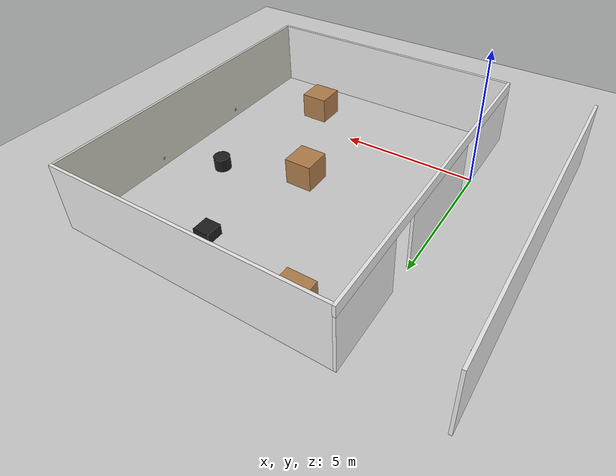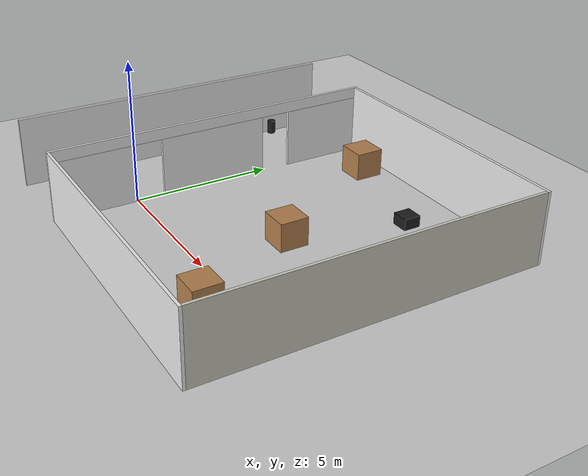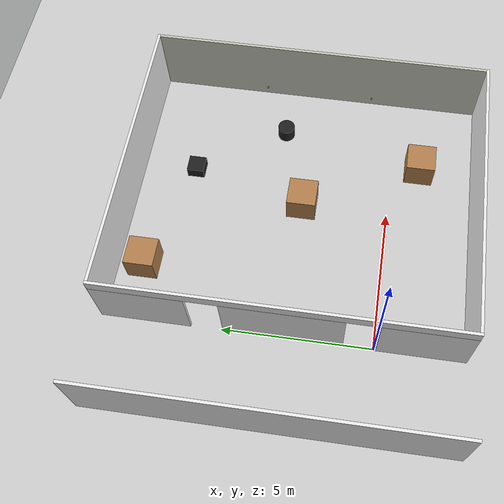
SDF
<sdf version="1.6">
 <world name="default">
  <include><uri>model://ground_plane</uri></include>
  <include><uri>model://sun</uri></include>
  <model name="walls">
   <static>true</static>
   <link name="wall_1">
    <collision name="wall_1_collision">
     <pose>0.03 2.96621 1.05342 0 0 0</pose>
     <geometry><box><size>0.1 3.93142 2.10684</size></box></geometry>
    </collision>
    <visual name="wall_1_visual">
     <pose>0.03 2.96621 1.05342 0 0 0</pose>
     <geometry><box><size>0.1 3.93142 2.10684</size></box></geometry>
     <material>
      <script><uri>file://media/materials/scripts/Gazebo.material</uri><name>Gazebo/White</name></script>
     </material>
    </visual>
   </link>
   <link name="wall_2">
    <collision name="wall_2_collision">
     <pose>0.03 -1.53429 1.05342 0 0 0</pose>
     <geometry><box><size>0.1 2.93142 2.10684</size></box></geometry>
    </collision>
    <visual name="wall_2_visual">
     <pose>0.03 -1.53429 1.05342 0 0 0</pose>
     <geometry><box><size>0.1 2.93142 2.10684</size></box></geometry>
     <material>
      <script><uri>file://media/materials/scripts/Gazebo.material</uri><name>Gazebo/White</name></script>
     </material>
    </visual>
   </link>
   <link name="wall_3">
    <collision name="wall_3_collision">
     <pose>0.03 7.5 1.05342 0 0 0</pose>
     <geometry><box><size>0.1 3 2.10684</size></box></geometry>
    </collision>
    <visual name="wall_3_visual">
     <pose>0.03 7.5 1.05342 0 0 0</pose>
     <geometry><box><size>0.1 3 2.10684</size></box></geometry>
     <material>
      <script><uri>file://media/materials/scripts/Gazebo.material</uri><name>Gazebo/White</name></script>
     </material>
    </visual>
   </link>
   <link name="wall_4">
    <collision name="wall_4_collision">
     <pose>0.03 3 2.30684 0 0 0</pose>
     <geometry><box><size>0.1 12 0.4</size></box></geometry>
    </collision>
    <visual name="wall_4_visual">
     <pose>0.03 3 2.30684 0 0 0</pose>
     <geometry><box><size>0.1 12 0.4</size></box></geometry>
     <material>
      <script><uri>file://media/materials/scripts/Gazebo.material</uri><name>Gazebo/White</name></script>
     </material>
    </visual>
   </link>
   <link name="wall_5">
    <collision name="wall_5_collision">
     <pose>5.04 -2.95 1.25342 0 0 0</pose>
     <geometry><box><size>9.92 0.1 2.50684</size></box></geometry>
    </collision>
    <visual name="wall_5_visual">
     <pose>5.04 -2.95 1.25342 0 0 0</pose>
     <geometry><box><size>9.92 0.1 2.50684</size></box></geometry>
     <material>
      <script><uri>file://media/materials/scripts/Gazebo.material</uri><name>Gazebo/White</name></script>
     </material>
    </visual>
   </link>
   <link name="wall_6">
    <collision name="wall_6_collision">
     <pose>5.04 8.95 1.25342 0 0 0</pose>
     <geometry><box><size>9.92 0.1 2.50684</size></box></geometry>
    </collision>
    <visual name="wall_6_visual">
     <pose>5.04 8.95 1.25342 0 0 0</pose>
     <geometry><box><size>9.92 0.1 2.50684</size></box></geometry>
     <material>
      <script><uri>file://media/materials/scripts/Gazebo.material</uri><name>Gazebo/White</name></script>
     </material>
    </visual>
   </link>
   <link name="wall_7">
    <collision name="wall_7_collision">
     <pose>9.95 3 1.25342 0 0 0</pose>
     <geometry><box><size>0.1 11.8 2.50684</size></box></geometry>
    </collision>
    <visual name="wall_7_visual">
     <pose>9.95 3 1.25342 0 0 0</pose>
     <geometry><box><size>0.1 11.8 2.50684</size></box></geometry>
     <material>
      <script><uri>file://media/materials/scripts/Gazebo.material</uri><name>Gazebo/PaintedWall</name></script>
     </material>
    </visual>
   </link>
   <link name="socket_1">
    <collision name="socket_1_collision">
     <pose>9.895 1 0.3 0 0 0</pose>
     <geometry><box><size>0.01 0.06 0.1</size></box></geometry>
    </collision>
    <visual name="socket_1_visual">
     <pose>9.895 1 0.3 0 0 0</pose>
     <geometry><box><size>0.01 0.06 0.1</size></box></geometry>
     <material>
      <script><uri>file://media/materials/scripts/texture.material</uri><name>dor_gazebo/socket</name></script>
     </material>
    </visual>
   </link>
   <link name="socket_2">
    <collision name="socket_2_collision">
     <pose>9.895 5 0.3 0 0 0</pose>
     <geometry><box><size>0.01 0.06 0.1</size></box></geometry>
    </collision>
    <visual name="socket_2_visual">
     <pose>9.895 5 0.3 0 0 0</pose>
     <geometry><box><size>0.01 0.06 0.1</size></box></geometry>
     <material>
      <script><uri>file://media/materials/scripts/texture.material</uri><name>dor_gazebo/socket</name></script>
     </material>
    </visual>
   </link>
   <link name="wall_8">
    <collision name="wall_8_collision">
     <pose>-3.05 3.0 1.25342 0 0 0</pose>
     <geometry><box><size>0.1 12 2.50684</size></box></geometry>
    </collision>
    <visual name="wall_8_visual">
     <pose>-3.05 3.0 1.25342 0 0 00</pose>
     <geometry><box><size>0.1 12 2.50684</size></box></geometry>
     <material>
      <script><uri>file://media/materials/scripts/Gazebo.material</uri><name>Gazebo/White</name></script>
     </material>
    </visual>
   </link>
  </model>
  <model name="obstacles">
   <static>true</static>
   <link name="obstacle_1">
    <collision name="obstacle_1_collision">
     <pose>5.0 3.0 0.5 0 0 0</pose>
     <geometry><box><size>1.0 1.0 1.0</size></box></geometry>
    </collision>
    <visual name="obstacle_1_visual">
     <pose>5.0 3.0 0.5 0 0 0</pose>
     <geometry><box><size>1.0 1.0 1.0</size></box></geometry>
     <material>
      <script><uri>file://media/materials/scripts/Gazebo.material</uri><name>Gazebo/Wood</name></script>
     </material>
    </visual>
   </link>
   <link name="obstacle_2">
    <collision name="obstacle_2_collision">
     <pose>7.0 -1.0 0.5 0 0 0</pose>
     <geometry><box><size>1.0 1.0 1.0</size></box></geometry>
    </collision>
    <visual name="obstacle_2_visual">
     <pose>7.0 -1.0 0.5 0 0 0</pose>
     <geometry><box><size>1.0 1.0 1.0</size></box></geometry>
     <material>
      <script><uri>file://media/materials/scripts/Gazebo.material</uri><name>Gazebo/Wood</name></script>
     </material>
    </visual>
   </link>
   <link name="obstacle_3">
    <collision name="obstacle_3_collision">
     <pose>2.0 8.0 0.5 0 0 0</pose>
     <geometry><box><size>1.0 1.0 1.0</size></box></geometry>
    </collision>
    <visual name="obstacle_3_visual">
     <pose>2.0 8.0 0.5 0 0 0</pose>
     <geometry><box><size>1.0 1.0 1.0</size></box></geometry>
     <material>
      <script><uri>file://media/materials/scripts/Gazebo.material</uri><name>Gazebo/Wood</name></script>
     </material>
    </visual>
   </link>
   <link name="obstacle_4">
    <collision name="obstacle_4_collision">
     <pose>6.0 7.0 0.2 0 0 0</pose>
     <geometry><box><size>0.6 0.6 0.4</size></box></geometry>
    </collision>
    <visual name="obstacle_4_visual">
     <pose>6.0 7.0 0.2 0 0 0</pose>
     <geometry><box><size>0.6 0.6 0.4</size></box></geometry>
     <material>
      <script><uri>file://media/materials/scripts/Gazebo.material</uri><name>Gazebo/Black</name></script>
     </material>
    </visual>
   </link>
   <link name="obstacle_5">
    <collision name="obstacle_5_collision">
     <pose>8.0 4.0 0.25 0 0 0</pose>
     <geometry><cylinder><radius>0.3</radius><length>0.5</length></cylinder></geometry>
    </collision>
    <visual name="obstacle_5_visual">
     <pose>8.0 4.0 0.25 0 0 0</pose>
     <geometry><cylinder><radius>0.3</radius><length>0.5</length></cylinder></geometry>
     <material>
      <script><uri>file://media/materials/scripts/Gazebo.material</uri><name>Gazebo/Black</name></script>
     </material>
    </visual>
   </link>
   <link name="obstacle_6">
    <collision name="obstacle_6_collision">
     <pose>-2.85 -1 0.25 0 0 0</pose>
     <geometry><cylinder><radius>0.15</radius><length>0.5</length></cylinder></geometry>
    </collision>
    <visual name="obstacle_6_visual">
     <pose>-2.85 -1 0.25 0 0 0</pose>
     <geometry><cylinder><radius>0.15</radius><length>0.5</length></cylinder></geometry>
     <material>
      <script><uri>file://media/materials/scripts/Gazebo.material</uri><name>Gazebo/Black</name></script>
     </material>
    </visual>
   </link>
   <link name="obstacle_7">
    <collision name="obstacle_7_collision">
     <pose>-2.85 7 0.25 0 0 0</pose>
     <geometry><cylinder><radius>0.15</radius><length>0.5</length></cylinder></geometry>
    </collision>
    <visual name="obstacle_7_visual">
     <pose>-2.85 7 0.25 0 0 0</pose>
     <geometry><cylinder><radius>0.15</radius><length>0.5</length></cylinder></geometry>
     <material>
      <script><uri>file://media/materials/scripts/Gazebo.material</uri><name>Gazebo/Black</name></script>
     </material>
    </visual>
   </link>
  </model>
  <ode>
   <stepTime>0.001</stepTime>
   <gravity>0 0 -9.8</gravity>
   <cfm>0.0000000001</cfm>
   <erp>0.2</erp>
   <quickStep>true</quickStep>
   <quickStepIters>1000</quickStepIters>
   <quickStepW>1.3</quickStepW>
   <contactMaxCorrectingVel>100.0</contactMaxCorrectingVel>
   <contactSurfaceLayer>0.001</contactSurfaceLayer>
  </ode>
 </world>
</sdf>
